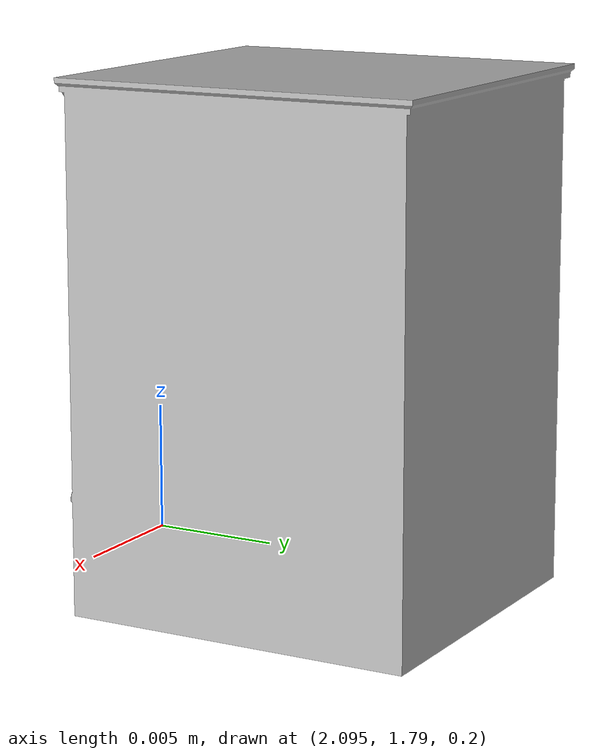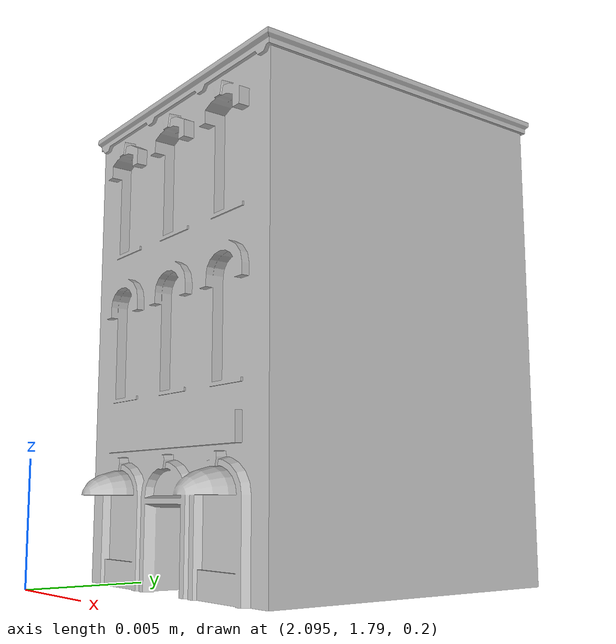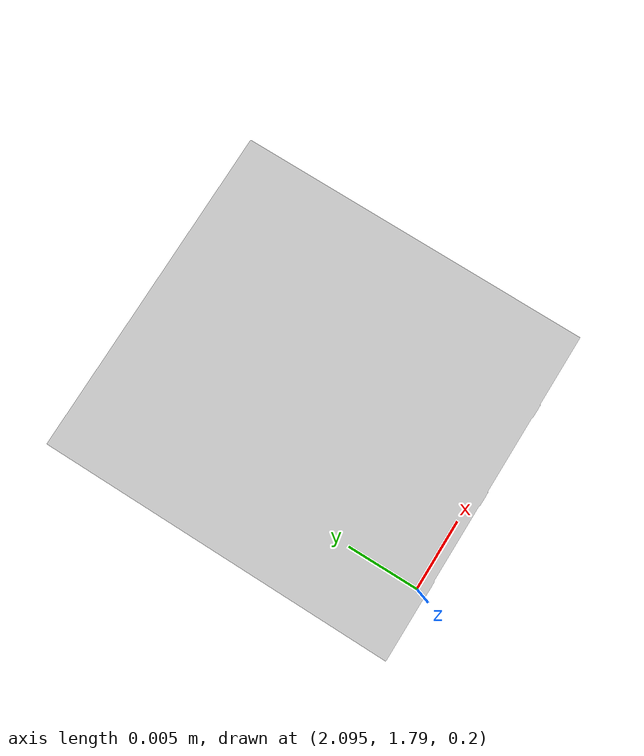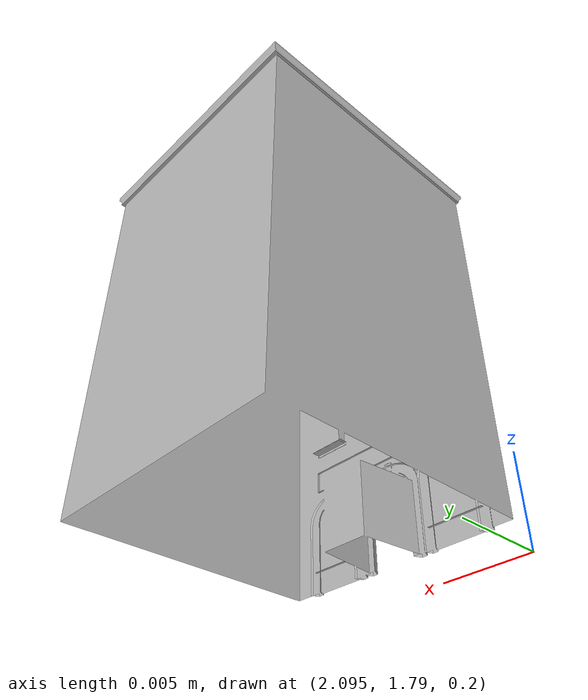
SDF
<?xml version="1.0" ?>
<sdf version="1.6">
  <model name="law_office">
    <pose>2.1 1.8 0.2 0 0 0</pose>
    <static>true</static>
    <link name="link">
      <collision name="collision">
        <pose>1.8 1.8 0.2 0 0 0</pose>
        <geometry>
          <box>
            <size>0.0006844012958 0.0005431646878 0.0013924872736</size>
          </box>
        </geometry>
      </collision>
      <visual name="visual">
        <geometry>
	        <mesh>
            <uri>model://law_office/meshes/law_office.dae</uri>
            <scale>0.1844012958 0.2431646878 0.13924872736</scale>
          </mesh>
        </geometry>
      </visual>
    </link>
  </model>
</sdf>
